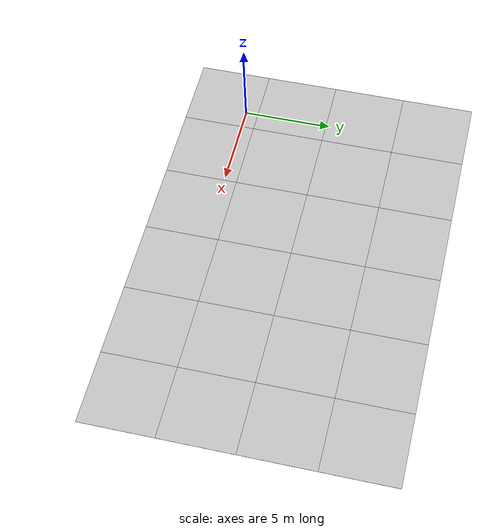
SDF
<sdf version='1.6'><world name='default'>
    <light name='sun_light' type='directional'>
      <pose frame=''>0 0 10 0 -0 0</pose>
      <diffuse>0.5 0.5 0.5 1</diffuse>
      <specular>0.1 0.1 0.1 1</specular>
      <direction>0.1 0.1 -0.9</direction>
      <attenuation>
        <range>20</range>
        <constant>0.5</constant>
        <linear>0.01</linear>
        <quadratic>0.001</quadratic>
      </attenuation>
      <cast_shadows>1</cast_shadows>
    </light>

    <model name='Tile/0-0'>
      <static>1</static>
      <link name='link'>
        <collision name='collision'>
          <geometry>
            <plane>
              <normal>0 0 1</normal>
              <size>4.096 4.096</size>
            </plane>
          </geometry>
          <surface>
            <friction>
              <ode>
                <mu>100</mu>
                <mu2>50</mu2>
              </ode>
              <torsional>
                <ode/>
              </torsional>
            </friction>
            <contact>
              <ode/>
            </contact>
            <bounce/>
          </surface>
          <max_contacts>10</max_contacts>
        </collision>
        <visual name='visual'>
          <cast_shadows>0</cast_shadows>
          <geometry>
            <plane>
              <normal>0 0 1</normal>
              <size>4.096 4.096</size>
            </plane>
          </geometry>
          <material>
            <script>
              <uri>file://materials/scripts</uri>
              <uri>file://materials/textures</uri>
              <name>Tile/2d6d550247164405bd7f7721bde8c66eb1b70c9c122a16d1426408409930bc02</name>
            </script>
          </material>
        </visual>
        <self_collide>0</self_collide>
        <enable_wind>0</enable_wind>
        <kinematic>0</kinematic>
      </link>
      <pose frame=''>-0.952 -1.3519999999999999 0 0 -0 0</pose>
    </model>

    <model name='Tile/0-1'>
      <static>1</static>
      <link name='link'>
        <collision name='collision'>
          <geometry>
            <plane>
              <normal>0 0 1</normal>
              <size>4.096 4.096</size>
            </plane>
          </geometry>
          <surface>
            <friction>
              <ode>
                <mu>100</mu>
                <mu2>50</mu2>
              </ode>
              <torsional>
                <ode/>
              </torsional>
            </friction>
            <contact>
              <ode/>
            </contact>
            <bounce/>
          </surface>
          <max_contacts>10</max_contacts>
        </collision>
        <visual name='visual'>
          <cast_shadows>0</cast_shadows>
          <geometry>
            <plane>
              <normal>0 0 1</normal>
              <size>4.096 4.096</size>
            </plane>
          </geometry>
          <material>
            <script>
              <uri>file://materials/scripts</uri>
              <uri>file://materials/textures</uri>
              <name>Tile/5eab350b8220ac9944dbdfa4ac3288c7c17e24c3bf5df0dfcf6173d64dae00a1</name>
            </script>
          </material>
        </visual>
        <self_collide>0</self_collide>
        <enable_wind>0</enable_wind>
        <kinematic>0</kinematic>
      </link>
      <pose frame=''>-0.952 2.744 0 0 -0 0</pose>
    </model>

    <model name='Tile/0-2'>
      <static>1</static>
      <link name='link'>
        <collision name='collision'>
          <geometry>
            <plane>
              <normal>0 0 1</normal>
              <size>4.096 4.096</size>
            </plane>
          </geometry>
          <surface>
            <friction>
              <ode>
                <mu>100</mu>
                <mu2>50</mu2>
              </ode>
              <torsional>
                <ode/>
              </torsional>
            </friction>
            <contact>
              <ode/>
            </contact>
            <bounce/>
          </surface>
          <max_contacts>10</max_contacts>
        </collision>
        <visual name='visual'>
          <cast_shadows>0</cast_shadows>
          <geometry>
            <plane>
              <normal>0 0 1</normal>
              <size>4.096 4.096</size>
            </plane>
          </geometry>
          <material>
            <script>
              <uri>file://materials/scripts</uri>
              <uri>file://materials/textures</uri>
              <name>Tile/5eab350b8220ac9944dbdfa4ac3288c7c17e24c3bf5df0dfcf6173d64dae00a1</name>
            </script>
          </material>
        </visual>
        <self_collide>0</self_collide>
        <enable_wind>0</enable_wind>
        <kinematic>0</kinematic>
      </link>
      <pose frame=''>-0.952 6.84 0 0 -0 0</pose>
    </model>

    <model name='Tile/0-3'>
      <static>1</static>
      <link name='link'>
        <collision name='collision'>
          <geometry>
            <plane>
              <normal>0 0 1</normal>
              <size>4.096 4.096</size>
            </plane>
          </geometry>
          <surface>
            <friction>
              <ode>
                <mu>100</mu>
                <mu2>50</mu2>
              </ode>
              <torsional>
                <ode/>
              </torsional>
            </friction>
            <contact>
              <ode/>
            </contact>
            <bounce/>
          </surface>
          <max_contacts>10</max_contacts>
        </collision>
        <visual name='visual'>
          <cast_shadows>0</cast_shadows>
          <geometry>
            <plane>
              <normal>0 0 1</normal>
              <size>4.096 4.096</size>
            </plane>
          </geometry>
          <material>
            <script>
              <uri>file://materials/scripts</uri>
              <uri>file://materials/textures</uri>
              <name>Tile/5eab350b8220ac9944dbdfa4ac3288c7c17e24c3bf5df0dfcf6173d64dae00a1</name>
            </script>
          </material>
        </visual>
        <self_collide>0</self_collide>
        <enable_wind>0</enable_wind>
        <kinematic>0</kinematic>
      </link>
      <pose frame=''>-0.952 10.936 0 0 -0 0</pose>
    </model>

    <model name='Tile/1-0'>
      <static>1</static>
      <link name='link'>
        <collision name='collision'>
          <geometry>
            <plane>
              <normal>0 0 1</normal>
              <size>4.096 4.096</size>
            </plane>
          </geometry>
          <surface>
            <friction>
              <ode>
                <mu>100</mu>
                <mu2>50</mu2>
              </ode>
              <torsional>
                <ode/>
              </torsional>
            </friction>
            <contact>
              <ode/>
            </contact>
            <bounce/>
          </surface>
          <max_contacts>10</max_contacts>
        </collision>
        <visual name='visual'>
          <cast_shadows>0</cast_shadows>
          <geometry>
            <plane>
              <normal>0 0 1</normal>
              <size>4.096 4.096</size>
            </plane>
          </geometry>
          <material>
            <script>
              <uri>file://materials/scripts</uri>
              <uri>file://materials/textures</uri>
              <name>Tile/7b8aec44b8796163012575e52b58240b3461f746dfcfe8f116ea9886b3cfb2ee</name>
            </script>
          </material>
        </visual>
        <self_collide>0</self_collide>
        <enable_wind>0</enable_wind>
        <kinematic>0</kinematic>
      </link>
      <pose frame=''>3.144 -1.3519999999999999 0 0 -0 0</pose>
    </model>

    <model name='Tile/1-1'>
      <static>1</static>
      <link name='link'>
        <collision name='collision'>
          <geometry>
            <plane>
              <normal>0 0 1</normal>
              <size>4.096 4.096</size>
            </plane>
          </geometry>
          <surface>
            <friction>
              <ode>
                <mu>100</mu>
                <mu2>50</mu2>
              </ode>
              <torsional>
                <ode/>
              </torsional>
            </friction>
            <contact>
              <ode/>
            </contact>
            <bounce/>
          </surface>
          <max_contacts>10</max_contacts>
        </collision>
        <visual name='visual'>
          <cast_shadows>0</cast_shadows>
          <geometry>
            <plane>
              <normal>0 0 1</normal>
              <size>4.096 4.096</size>
            </plane>
          </geometry>
          <material>
            <script>
              <uri>file://materials/scripts</uri>
              <uri>file://materials/textures</uri>
              <name>Tile/e0de33c618d93160b70d5a4bc40c871021b87d531cc3d567897d5839b21593d9</name>
            </script>
          </material>
        </visual>
        <self_collide>0</self_collide>
        <enable_wind>0</enable_wind>
        <kinematic>0</kinematic>
      </link>
      <pose frame=''>3.144 2.744 0 0 -0 0</pose>
    </model>

    <model name='Tile/1-2'>
      <static>1</static>
      <link name='link'>
        <collision name='collision'>
          <geometry>
            <plane>
              <normal>0 0 1</normal>
              <size>4.096 4.096</size>
            </plane>
          </geometry>
          <surface>
            <friction>
              <ode>
                <mu>100</mu>
                <mu2>50</mu2>
              </ode>
              <torsional>
                <ode/>
              </torsional>
            </friction>
            <contact>
              <ode/>
            </contact>
            <bounce/>
          </surface>
          <max_contacts>10</max_contacts>
        </collision>
        <visual name='visual'>
          <cast_shadows>0</cast_shadows>
          <geometry>
            <plane>
              <normal>0 0 1</normal>
              <size>4.096 4.096</size>
            </plane>
          </geometry>
          <material>
            <script>
              <uri>file://materials/scripts</uri>
              <uri>file://materials/textures</uri>
              <name>Tile/99c7ac9cd68a76e85a220325da4dbc71848bc4c08092e0a184717a2c4dc703f9</name>
            </script>
          </material>
        </visual>
        <self_collide>0</self_collide>
        <enable_wind>0</enable_wind>
        <kinematic>0</kinematic>
      </link>
      <pose frame=''>3.144 6.84 0 0 -0 0</pose>
    </model>

    <model name='Tile/1-3'>
      <static>1</static>
      <link name='link'>
        <collision name='collision'>
          <geometry>
            <plane>
              <normal>0 0 1</normal>
              <size>4.096 4.096</size>
            </plane>
          </geometry>
          <surface>
            <friction>
              <ode>
                <mu>100</mu>
                <mu2>50</mu2>
              </ode>
              <torsional>
                <ode/>
              </torsional>
            </friction>
            <contact>
              <ode/>
            </contact>
            <bounce/>
          </surface>
          <max_contacts>10</max_contacts>
        </collision>
        <visual name='visual'>
          <cast_shadows>0</cast_shadows>
          <geometry>
            <plane>
              <normal>0 0 1</normal>
              <size>4.096 4.096</size>
            </plane>
          </geometry>
          <material>
            <script>
              <uri>file://materials/scripts</uri>
              <uri>file://materials/textures</uri>
              <name>Tile/c1e7d9b61b27e9f26ca9f69488747f8232c4aa2f14ec32b5b2ac8a2b6b092fdf</name>
            </script>
          </material>
        </visual>
        <self_collide>0</self_collide>
        <enable_wind>0</enable_wind>
        <kinematic>0</kinematic>
      </link>
      <pose frame=''>3.144 10.936 0 0 -0 0</pose>
    </model>

    <model name='Tile/2-0'>
      <static>1</static>
      <link name='link'>
        <collision name='collision'>
          <geometry>
            <plane>
              <normal>0 0 1</normal>
              <size>4.096 4.096</size>
            </plane>
          </geometry>
          <surface>
            <friction>
              <ode>
                <mu>100</mu>
                <mu2>50</mu2>
              </ode>
              <torsional>
                <ode/>
              </torsional>
            </friction>
            <contact>
              <ode/>
            </contact>
            <bounce/>
          </surface>
          <max_contacts>10</max_contacts>
        </collision>
        <visual name='visual'>
          <cast_shadows>0</cast_shadows>
          <geometry>
            <plane>
              <normal>0 0 1</normal>
              <size>4.096 4.096</size>
            </plane>
          </geometry>
          <material>
            <script>
              <uri>file://materials/scripts</uri>
              <uri>file://materials/textures</uri>
              <name>Tile/5eab350b8220ac9944dbdfa4ac3288c7c17e24c3bf5df0dfcf6173d64dae00a1</name>
            </script>
          </material>
        </visual>
        <self_collide>0</self_collide>
        <enable_wind>0</enable_wind>
        <kinematic>0</kinematic>
      </link>
      <pose frame=''>7.24 -1.3519999999999999 0 0 -0 0</pose>
    </model>

    <model name='Tile/2-1'>
      <static>1</static>
      <link name='link'>
        <collision name='collision'>
          <geometry>
            <plane>
              <normal>0 0 1</normal>
              <size>4.096 4.096</size>
            </plane>
          </geometry>
          <surface>
            <friction>
              <ode>
                <mu>100</mu>
                <mu2>50</mu2>
              </ode>
              <torsional>
                <ode/>
              </torsional>
            </friction>
            <contact>
              <ode/>
            </contact>
            <bounce/>
          </surface>
          <max_contacts>10</max_contacts>
        </collision>
        <visual name='visual'>
          <cast_shadows>0</cast_shadows>
          <geometry>
            <plane>
              <normal>0 0 1</normal>
              <size>4.096 4.096</size>
            </plane>
          </geometry>
          <material>
            <script>
              <uri>file://materials/scripts</uri>
              <uri>file://materials/textures</uri>
              <name>Tile/5eab350b8220ac9944dbdfa4ac3288c7c17e24c3bf5df0dfcf6173d64dae00a1</name>
            </script>
          </material>
        </visual>
        <self_collide>0</self_collide>
        <enable_wind>0</enable_wind>
        <kinematic>0</kinematic>
      </link>
      <pose frame=''>7.24 2.744 0 0 -0 0</pose>
    </model>

    <model name='Tile/2-2'>
      <static>1</static>
      <link name='link'>
        <collision name='collision'>
          <geometry>
            <plane>
              <normal>0 0 1</normal>
              <size>4.096 4.096</size>
            </plane>
          </geometry>
          <surface>
            <friction>
              <ode>
                <mu>100</mu>
                <mu2>50</mu2>
              </ode>
              <torsional>
                <ode/>
              </torsional>
            </friction>
            <contact>
              <ode/>
            </contact>
            <bounce/>
          </surface>
          <max_contacts>10</max_contacts>
        </collision>
        <visual name='visual'>
          <cast_shadows>0</cast_shadows>
          <geometry>
            <plane>
              <normal>0 0 1</normal>
              <size>4.096 4.096</size>
            </plane>
          </geometry>
          <material>
            <script>
              <uri>file://materials/scripts</uri>
              <uri>file://materials/textures</uri>
              <name>Tile/39d5b378a997886b9f0f6b6dc008c5ab0779d97bb3626f201cdf636d312356fb</name>
            </script>
          </material>
        </visual>
        <self_collide>0</self_collide>
        <enable_wind>0</enable_wind>
        <kinematic>0</kinematic>
      </link>
      <pose frame=''>7.24 6.84 0 0 -0 0</pose>
    </model>

    <model name='Tile/2-3'>
      <static>1</static>
      <link name='link'>
        <collision name='collision'>
          <geometry>
            <plane>
              <normal>0 0 1</normal>
              <size>4.096 4.096</size>
            </plane>
          </geometry>
          <surface>
            <friction>
              <ode>
                <mu>100</mu>
                <mu2>50</mu2>
              </ode>
              <torsional>
                <ode/>
              </torsional>
            </friction>
            <contact>
              <ode/>
            </contact>
            <bounce/>
          </surface>
          <max_contacts>10</max_contacts>
        </collision>
        <visual name='visual'>
          <cast_shadows>0</cast_shadows>
          <geometry>
            <plane>
              <normal>0 0 1</normal>
              <size>4.096 4.096</size>
            </plane>
          </geometry>
          <material>
            <script>
              <uri>file://materials/scripts</uri>
              <uri>file://materials/textures</uri>
              <name>Tile/5eab350b8220ac9944dbdfa4ac3288c7c17e24c3bf5df0dfcf6173d64dae00a1</name>
            </script>
          </material>
        </visual>
        <self_collide>0</self_collide>
        <enable_wind>0</enable_wind>
        <kinematic>0</kinematic>
      </link>
      <pose frame=''>7.24 10.936 0 0 -0 0</pose>
    </model>

    <model name='Tile/3-0'>
      <static>1</static>
      <link name='link'>
        <collision name='collision'>
          <geometry>
            <plane>
              <normal>0 0 1</normal>
              <size>4.096 4.096</size>
            </plane>
          </geometry>
          <surface>
            <friction>
              <ode>
                <mu>100</mu>
                <mu2>50</mu2>
              </ode>
              <torsional>
                <ode/>
              </torsional>
            </friction>
            <contact>
              <ode/>
            </contact>
            <bounce/>
          </surface>
          <max_contacts>10</max_contacts>
        </collision>
        <visual name='visual'>
          <cast_shadows>0</cast_shadows>
          <geometry>
            <plane>
              <normal>0 0 1</normal>
              <size>4.096 4.096</size>
            </plane>
          </geometry>
          <material>
            <script>
              <uri>file://materials/scripts</uri>
              <uri>file://materials/textures</uri>
              <name>Tile/5eab350b8220ac9944dbdfa4ac3288c7c17e24c3bf5df0dfcf6173d64dae00a1</name>
            </script>
          </material>
        </visual>
        <self_collide>0</self_collide>
        <enable_wind>0</enable_wind>
        <kinematic>0</kinematic>
      </link>
      <pose frame=''>11.336 -1.3519999999999999 0 0 -0 0</pose>
    </model>

    <model name='Tile/3-1'>
      <static>1</static>
      <link name='link'>
        <collision name='collision'>
          <geometry>
            <plane>
              <normal>0 0 1</normal>
              <size>4.096 4.096</size>
            </plane>
          </geometry>
          <surface>
            <friction>
              <ode>
                <mu>100</mu>
                <mu2>50</mu2>
              </ode>
              <torsional>
                <ode/>
              </torsional>
            </friction>
            <contact>
              <ode/>
            </contact>
            <bounce/>
          </surface>
          <max_contacts>10</max_contacts>
        </collision>
        <visual name='visual'>
          <cast_shadows>0</cast_shadows>
          <geometry>
            <plane>
              <normal>0 0 1</normal>
              <size>4.096 4.096</size>
            </plane>
          </geometry>
          <material>
            <script>
              <uri>file://materials/scripts</uri>
              <uri>file://materials/textures</uri>
              <name>Tile/5eab350b8220ac9944dbdfa4ac3288c7c17e24c3bf5df0dfcf6173d64dae00a1</name>
            </script>
          </material>
        </visual>
        <self_collide>0</self_collide>
        <enable_wind>0</enable_wind>
        <kinematic>0</kinematic>
      </link>
      <pose frame=''>11.336 2.744 0 0 -0 0</pose>
    </model>

    <model name='Tile/3-2'>
      <static>1</static>
      <link name='link'>
        <collision name='collision'>
          <geometry>
            <plane>
              <normal>0 0 1</normal>
              <size>4.096 4.096</size>
            </plane>
          </geometry>
          <surface>
            <friction>
              <ode>
                <mu>100</mu>
                <mu2>50</mu2>
              </ode>
              <torsional>
                <ode/>
              </torsional>
            </friction>
            <contact>
              <ode/>
            </contact>
            <bounce/>
          </surface>
          <max_contacts>10</max_contacts>
        </collision>
        <visual name='visual'>
          <cast_shadows>0</cast_shadows>
          <geometry>
            <plane>
              <normal>0 0 1</normal>
              <size>4.096 4.096</size>
            </plane>
          </geometry>
          <material>
            <script>
              <uri>file://materials/scripts</uri>
              <uri>file://materials/textures</uri>
              <name>Tile/e45c9827a397eb63643fb8b16a9d202ccc35d0c70b8112510a9af6ad6b555a6a</name>
            </script>
          </material>
        </visual>
        <self_collide>0</self_collide>
        <enable_wind>0</enable_wind>
        <kinematic>0</kinematic>
      </link>
      <pose frame=''>11.336 6.84 0 0 -0 0</pose>
    </model>

    <model name='Tile/3-3'>
      <static>1</static>
      <link name='link'>
        <collision name='collision'>
          <geometry>
            <plane>
              <normal>0 0 1</normal>
              <size>4.096 4.096</size>
            </plane>
          </geometry>
          <surface>
            <friction>
              <ode>
                <mu>100</mu>
                <mu2>50</mu2>
              </ode>
              <torsional>
                <ode/>
              </torsional>
            </friction>
            <contact>
              <ode/>
            </contact>
            <bounce/>
          </surface>
          <max_contacts>10</max_contacts>
        </collision>
        <visual name='visual'>
          <cast_shadows>0</cast_shadows>
          <geometry>
            <plane>
              <normal>0 0 1</normal>
              <size>4.096 4.096</size>
            </plane>
          </geometry>
          <material>
            <script>
              <uri>file://materials/scripts</uri>
              <uri>file://materials/textures</uri>
              <name>Tile/5eab350b8220ac9944dbdfa4ac3288c7c17e24c3bf5df0dfcf6173d64dae00a1</name>
            </script>
          </material>
        </visual>
        <self_collide>0</self_collide>
        <enable_wind>0</enable_wind>
        <kinematic>0</kinematic>
      </link>
      <pose frame=''>11.336 10.936 0 0 -0 0</pose>
    </model>

    <model name='Tile/4-0'>
      <static>1</static>
      <link name='link'>
        <collision name='collision'>
          <geometry>
            <plane>
              <normal>0 0 1</normal>
              <size>4.096 4.096</size>
            </plane>
          </geometry>
          <surface>
            <friction>
              <ode>
                <mu>100</mu>
                <mu2>50</mu2>
              </ode>
              <torsional>
                <ode/>
              </torsional>
            </friction>
            <contact>
              <ode/>
            </contact>
            <bounce/>
          </surface>
          <max_contacts>10</max_contacts>
        </collision>
        <visual name='visual'>
          <cast_shadows>0</cast_shadows>
          <geometry>
            <plane>
              <normal>0 0 1</normal>
              <size>4.096 4.096</size>
            </plane>
          </geometry>
          <material>
            <script>
              <uri>file://materials/scripts</uri>
              <uri>file://materials/textures</uri>
              <name>Tile/5eab350b8220ac9944dbdfa4ac3288c7c17e24c3bf5df0dfcf6173d64dae00a1</name>
            </script>
          </material>
        </visual>
        <self_collide>0</self_collide>
        <enable_wind>0</enable_wind>
        <kinematic>0</kinematic>
      </link>
      <pose frame=''>15.431999999999999 -1.3519999999999999 0 0 -0 0</pose>
    </model>

    <model name='Tile/4-1'>
      <static>1</static>
      <link name='link'>
        <collision name='collision'>
          <geometry>
            <plane>
              <normal>0 0 1</normal>
              <size>4.096 4.096</size>
            </plane>
          </geometry>
          <surface>
            <friction>
              <ode>
                <mu>100</mu>
                <mu2>50</mu2>
              </ode>
              <torsional>
                <ode/>
              </torsional>
            </friction>
            <contact>
              <ode/>
            </contact>
            <bounce/>
          </surface>
          <max_contacts>10</max_contacts>
        </collision>
        <visual name='visual'>
          <cast_shadows>0</cast_shadows>
          <geometry>
            <plane>
              <normal>0 0 1</normal>
              <size>4.096 4.096</size>
            </plane>
          </geometry>
          <material>
            <script>
              <uri>file://materials/scripts</uri>
              <uri>file://materials/textures</uri>
              <name>Tile/5eab350b8220ac9944dbdfa4ac3288c7c17e24c3bf5df0dfcf6173d64dae00a1</name>
            </script>
          </material>
        </visual>
        <self_collide>0</self_collide>
        <enable_wind>0</enable_wind>
        <kinematic>0</kinematic>
      </link>
      <pose frame=''>15.431999999999999 2.744 0 0 -0 0</pose>
    </model>

    <model name='Tile/4-2'>
      <static>1</static>
      <link name='link'>
        <collision name='collision'>
          <geometry>
            <plane>
              <normal>0 0 1</normal>
              <size>4.096 4.096</size>
            </plane>
          </geometry>
          <surface>
            <friction>
              <ode>
                <mu>100</mu>
                <mu2>50</mu2>
              </ode>
              <torsional>
                <ode/>
              </torsional>
            </friction>
            <contact>
              <ode/>
            </contact>
            <bounce/>
          </surface>
          <max_contacts>10</max_contacts>
        </collision>
        <visual name='visual'>
          <cast_shadows>0</cast_shadows>
          <geometry>
            <plane>
              <normal>0 0 1</normal>
              <size>4.096 4.096</size>
            </plane>
          </geometry>
          <material>
            <script>
              <uri>file://materials/scripts</uri>
              <uri>file://materials/textures</uri>
              <name>Tile/c3faedff49566d5f028412f2fe98d635c226ddf7a3594931d2e3d9b81e7c6019</name>
            </script>
          </material>
        </visual>
        <self_collide>0</self_collide>
        <enable_wind>0</enable_wind>
        <kinematic>0</kinematic>
      </link>
      <pose frame=''>15.431999999999999 6.84 0 0 -0 0</pose>
    </model>

    <model name='Tile/4-3'>
      <static>1</static>
      <link name='link'>
        <collision name='collision'>
          <geometry>
            <plane>
              <normal>0 0 1</normal>
              <size>4.096 4.096</size>
            </plane>
          </geometry>
          <surface>
            <friction>
              <ode>
                <mu>100</mu>
                <mu2>50</mu2>
              </ode>
              <torsional>
                <ode/>
              </torsional>
            </friction>
            <contact>
              <ode/>
            </contact>
            <bounce/>
          </surface>
          <max_contacts>10</max_contacts>
        </collision>
        <visual name='visual'>
          <cast_shadows>0</cast_shadows>
          <geometry>
            <plane>
              <normal>0 0 1</normal>
              <size>4.096 4.096</size>
            </plane>
          </geometry>
          <material>
            <script>
              <uri>file://materials/scripts</uri>
              <uri>file://materials/textures</uri>
              <name>Tile/5eab350b8220ac9944dbdfa4ac3288c7c17e24c3bf5df0dfcf6173d64dae00a1</name>
            </script>
          </material>
        </visual>
        <self_collide>0</self_collide>
        <enable_wind>0</enable_wind>
        <kinematic>0</kinematic>
      </link>
      <pose frame=''>15.431999999999999 10.936 0 0 -0 0</pose>
    </model>

    <model name='Tile/5-0'>
      <static>1</static>
      <link name='link'>
        <collision name='collision'>
          <geometry>
            <plane>
              <normal>0 0 1</normal>
              <size>4.096 4.096</size>
            </plane>
          </geometry>
          <surface>
            <friction>
              <ode>
                <mu>100</mu>
                <mu2>50</mu2>
              </ode>
              <torsional>
                <ode/>
              </torsional>
            </friction>
            <contact>
              <ode/>
            </contact>
            <bounce/>
          </surface>
          <max_contacts>10</max_contacts>
        </collision>
        <visual name='visual'>
          <cast_shadows>0</cast_shadows>
          <geometry>
            <plane>
              <normal>0 0 1</normal>
              <size>4.096 4.096</size>
            </plane>
          </geometry>
          <material>
            <script>
              <uri>file://materials/scripts</uri>
              <uri>file://materials/textures</uri>
              <name>Tile/5eab350b8220ac9944dbdfa4ac3288c7c17e24c3bf5df0dfcf6173d64dae00a1</name>
            </script>
          </material>
        </visual>
        <self_collide>0</self_collide>
        <enable_wind>0</enable_wind>
        <kinematic>0</kinematic>
      </link>
      <pose frame=''>19.528 -1.3519999999999999 0 0 -0 0</pose>
    </model>

    <model name='Tile/5-1'>
      <static>1</static>
      <link name='link'>
        <collision name='collision'>
          <geometry>
            <plane>
              <normal>0 0 1</normal>
              <size>4.096 4.096</size>
            </plane>
          </geometry>
          <surface>
            <friction>
              <ode>
                <mu>100</mu>
                <mu2>50</mu2>
              </ode>
              <torsional>
                <ode/>
              </torsional>
            </friction>
            <contact>
              <ode/>
            </contact>
            <bounce/>
          </surface>
          <max_contacts>10</max_contacts>
        </collision>
        <visual name='visual'>
          <cast_shadows>0</cast_shadows>
          <geometry>
            <plane>
              <normal>0 0 1</normal>
              <size>4.096 4.096</size>
            </plane>
          </geometry>
          <material>
            <script>
              <uri>file://materials/scripts</uri>
              <uri>file://materials/textures</uri>
              <name>Tile/5eab350b8220ac9944dbdfa4ac3288c7c17e24c3bf5df0dfcf6173d64dae00a1</name>
            </script>
          </material>
        </visual>
        <self_collide>0</self_collide>
        <enable_wind>0</enable_wind>
        <kinematic>0</kinematic>
      </link>
      <pose frame=''>19.528 2.744 0 0 -0 0</pose>
    </model>

    <model name='Tile/5-2'>
      <static>1</static>
      <link name='link'>
        <collision name='collision'>
          <geometry>
            <plane>
              <normal>0 0 1</normal>
              <size>4.096 4.096</size>
            </plane>
          </geometry>
          <surface>
            <friction>
              <ode>
                <mu>100</mu>
                <mu2>50</mu2>
              </ode>
              <torsional>
                <ode/>
              </torsional>
            </friction>
            <contact>
              <ode/>
            </contact>
            <bounce/>
          </surface>
          <max_contacts>10</max_contacts>
        </collision>
        <visual name='visual'>
          <cast_shadows>0</cast_shadows>
          <geometry>
            <plane>
              <normal>0 0 1</normal>
              <size>4.096 4.096</size>
            </plane>
          </geometry>
          <material>
            <script>
              <uri>file://materials/scripts</uri>
              <uri>file://materials/textures</uri>
              <name>Tile/5eab350b8220ac9944dbdfa4ac3288c7c17e24c3bf5df0dfcf6173d64dae00a1</name>
            </script>
          </material>
        </visual>
        <self_collide>0</self_collide>
        <enable_wind>0</enable_wind>
        <kinematic>0</kinematic>
      </link>
      <pose frame=''>19.528 6.84 0 0 -0 0</pose>
    </model>

    <model name='Tile/5-3'>
      <static>1</static>
      <link name='link'>
        <collision name='collision'>
          <geometry>
            <plane>
              <normal>0 0 1</normal>
              <size>4.096 4.096</size>
            </plane>
          </geometry>
          <surface>
            <friction>
              <ode>
                <mu>100</mu>
                <mu2>50</mu2>
              </ode>
              <torsional>
                <ode/>
              </torsional>
            </friction>
            <contact>
              <ode/>
            </contact>
            <bounce/>
          </surface>
          <max_contacts>10</max_contacts>
        </collision>
        <visual name='visual'>
          <cast_shadows>0</cast_shadows>
          <geometry>
            <plane>
              <normal>0 0 1</normal>
              <size>4.096 4.096</size>
            </plane>
          </geometry>
          <material>
            <script>
              <uri>file://materials/scripts</uri>
              <uri>file://materials/textures</uri>
              <name>Tile/5eab350b8220ac9944dbdfa4ac3288c7c17e24c3bf5df0dfcf6173d64dae00a1</name>
            </script>
          </material>
        </visual>
        <self_collide>0</self_collide>
        <enable_wind>0</enable_wind>
        <kinematic>0</kinematic>
      </link>
      <pose frame=''>19.528 10.936 0 0 -0 0</pose>
    </model>
    </world></sdf>
